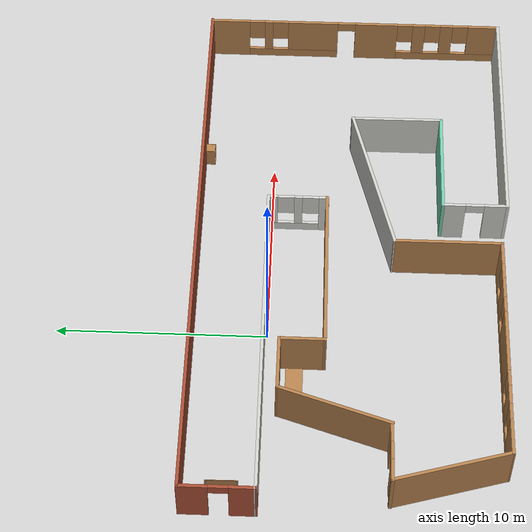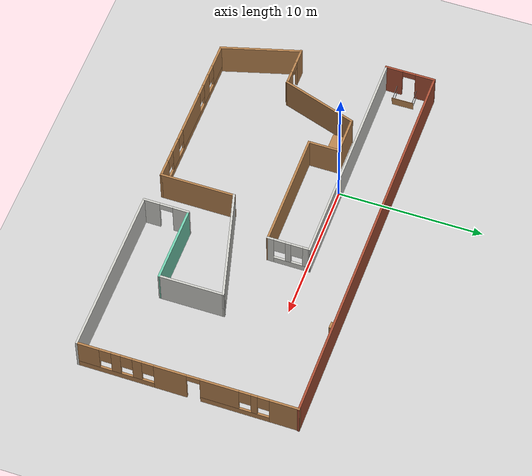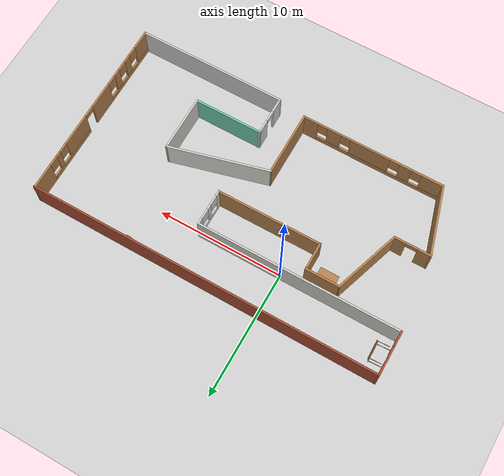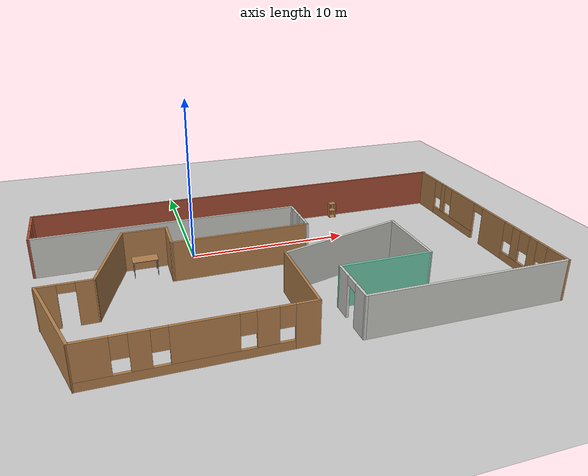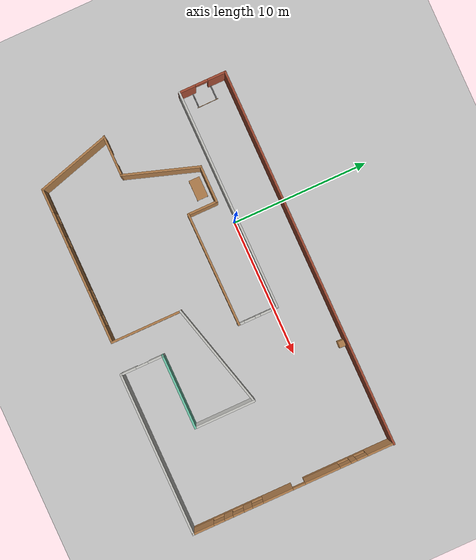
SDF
<sdf version="1.6">
 <world name="default">
  <light name="sun" type="directional">
   <pose>0 0 10 0 -0 0</pose>
   <diffuse>0.8 0.8 0.8 1</diffuse>
   <specular>0.2 0.2 0.2 1</specular>
   <attenuation>
    <range>1000</range>
    <constant>0.9</constant>
    <linear>0.01</linear>
    <quadratic>0.001</quadratic>
   </attenuation>
   <direction>-0.5 0.1 -0.9</direction>
  </light>
  <model name="ground_plane">
   <static>1</static>
   <link name="link">
    <collision name="collision">
     <geometry><plane><normal>0 0 1</normal><size>100 100</size></plane></geometry>
     <surface>
      <contact><collide_bitmask>65535</collide_bitmask></contact>
      <friction><ode><mu>100</mu><mu2>50</mu2></ode></friction>
     </surface>
    </collision>
    <visual name="visual">
     <cast_shadows>0</cast_shadows>
     <geometry><plane><normal>0 0 1</normal><size>100 100</size></plane></geometry>
     <material>
      <script><uri>file://media/materials/scripts/gazebo.material</uri><name>Gazebo/Grey</name></script>
     </material>
    </visual>
   </link>
  </model>
  <gravity>0 0 -9.8</gravity>
  <magnetic_field>6e-06 2.3e-05 -4.2e-05</magnetic_field>
  <atmosphere type="adiabatic"/>
  <physics name="default_physics" default="0" type="ode">
   <max_step_size>0.001</max_step_size>
   <real_time_factor>1</real_time_factor>
   <real_time_update_rate>1000</real_time_update_rate>
  </physics>
  <scene><ambient>0.4 0.4 0.4 1</ambient><background>0.7 0.7 0.7 1</background><shadows>1</shadows></scene>
  <spherical_coordinates>
   <surface_model>EARTH_WGS84</surface_model>
   <latitude_deg>0</latitude_deg>
   <longitude_deg>0</longitude_deg>
   <elevation>0</elevation>
   <heading_deg>0</heading_deg>
  </spherical_coordinates>
  <model name="mybuilding">
   <pose>4.42107 -3.89727 0 0 -0 0</pose>
   <link name="Wall_0">
    <collision name="Wall_0_Collision">
     <geometry><box><size>5.55933 0.15 2.5</size></box></geometry>
     <pose>0 0 1.25 0 -0 0</pose>
    </collision>
    <visual name="Wall_0_Visual">
     <pose>0 0 1.25 0 -0 0</pose>
     <geometry><box><size>5.55933 0.15 2.5</size></box></geometry>
     <material>
      <script><uri>file://media/materials/scripts/gazebo.material</uri><name>Gazebo/Wood</name></script>
      <ambient>1 1 1 1</ambient>
     </material>
     <meta><layer>0</layer></meta>
    </visual>
    <pose>-9.51879 0.729528 0 0 -0 1.25282</pose>
   </link>
   <link name="Wall_1">
    <collision name="Wall_1_Collision">
     <geometry><box><size>2.75 0.15 2.5</size></box></geometry>
     <pose>0 0 1.25 0 -0 0</pose>
    </collision>
    <visual name="Wall_1_Visual">
     <pose>0 0 1.25 0 -0 0</pose>
     <geometry><box><size>2.75 0.15 2.5</size></box></geometry>
     <material>
      <script><uri>file://media/materials/scripts/gazebo.material</uri><name>Gazebo/Wood</name></script>
      <ambient>1 1 1 1</ambient>
     </material>
     <meta><layer>0</layer></meta>
    </visual>
    <pose>-7.37318 3.2986 0 0 -0 0</pose>
   </link>
   <link name="Wall_10">
    <pose>1.92683 -5.9014 0 0 -0 1.5708</pose>
    <visual name="Wall_10_Visual_0">
     <pose>-1.03062 0 1.25 0 -0 0</pose>
     <geometry><box><size>1.18875 0.15 2.5</size></box></geometry>
     <material>
      <script><uri>file://media/materials/scripts/gazebo.material</uri><name>Gazebo/CeilingTiled</name></script>
      <ambient>0.435294 0.796078 0.67451 1</ambient>
     </material>
     <meta><layer>0</layer></meta>
    </visual>
    <collision name="Wall_10_Collision_0">
     <geometry><box><size>1.18875 0.15 2.5</size></box></geometry>
     <pose>-1.03062 0 1.25 0 -0 0</pose>
    </collision>
    <visual name="Wall_10_Visual_1">
     <pose>1.04438 0 1.25 0 -0 0</pose>
     <geometry><box><size>1.16125 0.15 2.5</size></box></geometry>
     <material>
      <script><uri>file://media/materials/scripts/gazebo.material</uri><name>Gazebo/CeilingTiled</name></script>
      <ambient>0.435294 0.796078 0.67451 1</ambient>
     </material>
     <meta><layer>0</layer></meta>
    </visual>
    <collision name="Wall_10_Collision_1">
     <geometry><box><size>1.16125 0.15 2.5</size></box></geometry>
     <pose>1.04438 0 1.25 0 -0 0</pose>
    </collision>
    <visual name="Wall_10_Visual_2">
     <pose>0.013754 0 2.25 0 -0 0</pose>
     <geometry><box><size>0.9 0.15 0.5</size></box></geometry>
     <material>
      <script><uri>file://media/materials/scripts/gazebo.material</uri><name>Gazebo/CeilingTiled</name></script>
      <ambient>0.435294 0.796078 0.67451 1</ambient>
     </material>
     <meta><layer>0</layer></meta>
    </visual>
    <collision name="Wall_10_Collision_2">
     <geometry><box><size>0.9 0.15 0.5</size></box></geometry>
     <pose>0.013754 0 2.25 0 -0 0</pose>
    </collision>
   </link>
   <link name="Wall_11">
    <collision name="Wall_11_Collision">
     <geometry><box><size>5.5 0.15 2.5</size></box></geometry>
     <pose>0 0 1.25 0 -0 0</pose>
    </collision>
    <visual name="Wall_11_Visual">
     <pose>0 0 1.25 0 -0 0</pose>
     <geometry><box><size>5.5 0.15 2.5</size></box></geometry>
     <material>
      <script><uri>file://media/materials/scripts/gazebo.material</uri><name>Gazebo/Grey</name></script>
      <ambient>0.435294 0.796078 0.67451 1</ambient>
     </material>
     <meta><layer>0</layer></meta>
    </visual>
    <pose>4.60182 -4.3514 0 0 -0 0</pose>
   </link>
   <link name="Wall_12">
    <collision name="Wall_12_Collision">
     <geometry><box><size>4.53176 0.15 2.5</size></box></geometry>
     <pose>0 0 1.25 0 -0 0</pose>
    </collision>
    <visual name="Wall_12_Visual">
     <pose>0 0 1.25 0 -0 0</pose>
     <geometry><box><size>4.53176 0.15 2.5</size></box></geometry>
     <material>
      <script><uri>file://media/materials/scripts/gazebo.material</uri><name>Gazebo/CeilingTiled</name></script>
      <ambient>0.435294 0.796078 0.67451 1</ambient>
     </material>
     <meta><layer>0</layer></meta>
    </visual>
    <pose>7.26808 -2.16053 0 0 -0 1.57479</pose>
   </link>
   <link name="Wall_13">
    <collision name="Wall_13_Collision">
     <geometry><box><size>8 0.15 2.5</size></box></geometry>
     <pose>0 0 1.25 0 -0 0</pose>
    </collision>
    <visual name="Wall_13_Visual">
     <pose>0 0 1.25 0 -0 0</pose>
     <geometry><box><size>8 0.15 2.5</size></box></geometry>
     <material>
      <script><uri>file://media/materials/scripts/gazebo.material</uri><name>Gazebo/CeilingTiled</name></script>
      <ambient>0.435294 0.796078 0.67451 1</ambient>
     </material>
     <meta><layer>0</layer></meta>
    </visual>
    <pose>3.46808 -0.985531 0 0 0 -2.87979</pose>
   </link>
   <link name="Wall_14">
    <collision name="Wall_14_Collision">
     <geometry><box><size>5.25 0.15 2.5</size></box></geometry>
     <pose>0 0 1.25 0 -0 0</pose>
    </collision>
    <visual name="Wall_14_Visual">
     <pose>0 0 1.25 0 -0 0</pose>
     <geometry><box><size>5.25 0.15 2.5</size></box></geometry>
     <material>
      <script><uri>file://media/materials/scripts/gazebo.material</uri><name>Gazebo/Wood</name></script>
      <ambient>1 1 1 1</ambient>
     </material>
     <meta><layer>0</layer></meta>
    </visual>
    <pose>-0.323175 -4.5514 0 0 0 -1.5708</pose>
   </link>
   <link name="Wall_15">
    <pose>-5.99818 -7.1014 0 0 -0 3.14159</pose>
    <visual name="Wall_15_Visual_0">
     <pose>-5.1146 0 1.25 0 -0 0</pose>
     <geometry><box><size>1.2708 0.15 2.5</size></box></geometry>
     <material>
      <script><uri>file://media/materials/scripts/gazebo.material</uri><name>Gazebo/Wood</name></script>
      <ambient>1 1 1 1</ambient>
     </material>
     <meta><layer>0</layer></meta>
    </visual>
    <collision name="Wall_15_Collision_0">
     <geometry><box><size>1.2708 0.15 2.5</size></box></geometry>
     <pose>-5.1146 0 1.25 0 -0 0</pose>
    </collision>
    <visual name="Wall_15_Visual_1">
     <pose>0.635401 0 0.25 0 -0 0</pose>
     <geometry><box><size>10.2292 0.15 0.5</size></box></geometry>
     <material>
      <script><uri>file://media/materials/scripts/gazebo.material</uri><name>Gazebo/Wood</name></script>
      <ambient>1 1 1 1</ambient>
     </material>
     <meta><layer>0</layer></meta>
    </visual>
    <collision name="Wall_15_Collision_1">
     <geometry><box><size>10.2292 0.15 0.5</size></box></geometry>
     <pose>0.635401 0 0.25 0 -0 0</pose>
    </collision>
    <visual name="Wall_15_Visual_2">
     <pose>-3.13489 0 1.5 0 -0 0</pose>
     <geometry><box><size>1.08861 0.15 2</size></box></geometry>
     <material>
      <script><uri>file://media/materials/scripts/gazebo.material</uri><name>Gazebo/Wood</name></script>
      <ambient>1 1 1 1</ambient>
     </material>
     <meta><layer>0</layer></meta>
    </visual>
    <collision name="Wall_15_Collision_2">
     <geometry><box><size>1.08861 0.15 2</size></box></geometry>
     <pose>-3.13489 0 1.5 0 -0 0</pose>
    </collision>
    <visual name="Wall_15_Visual_3">
     <pose>-0.182268 0 1.5 0 -0 0</pose>
     <geometry><box><size>3.21663 0.15 2</size></box></geometry>
     <material>
      <script><uri>file://media/materials/scripts/gazebo.material</uri><name>Gazebo/Wood</name></script>
      <ambient>1 1 1 1</ambient>
     </material>
     <meta><layer>0</layer></meta>
    </visual>
    <collision name="Wall_15_Collision_3">
     <geometry><box><size>3.21663 0.15 2</size></box></geometry>
     <pose>-0.182268 0 1.5 0 -0 0</pose>
    </collision>
    <visual name="Wall_15_Visual_4">
     <pose>2.70385 0 1.5 0 -0 0</pose>
     <geometry><box><size>0.955613 0.15 2</size></box></geometry>
     <material>
      <script><uri>file://media/materials/scripts/gazebo.material</uri><name>Gazebo/Wood</name></script>
      <ambient>1 1 1 1</ambient>
     </material>
     <meta><layer>0</layer></meta>
    </visual>
    <collision name="Wall_15_Collision_4">
     <geometry><box><size>0.955613 0.15 2</size></box></geometry>
     <pose>2.70385 0 1.5 0 -0 0</pose>
    </collision>
    <visual name="Wall_15_Visual_5">
     <pose>4.86583 0 1.5 0 -0 0</pose>
     <geometry><box><size>1.76834 0.15 2</size></box></geometry>
     <material>
      <script><uri>file://media/materials/scripts/gazebo.material</uri><name>Gazebo/Wood</name></script>
      <ambient>1 1 1 1</ambient>
     </material>
     <meta><layer>0</layer></meta>
    </visual>
    <collision name="Wall_15_Collision_5">
     <geometry><box><size>1.76834 0.15 2</size></box></geometry>
     <pose>4.86583 0 1.5 0 -0 0</pose>
    </collision>
    <visual name="Wall_15_Visual_6">
     <pose>-4.0792 0 1.9 0 -0 0</pose>
     <geometry><box><size>0.8 0.15 1.2</size></box></geometry>
     <material>
      <script><uri>file://media/materials/scripts/gazebo.material</uri><name>Gazebo/Wood</name></script>
      <ambient>1 1 1 1</ambient>
     </material>
     <meta><layer>0</layer></meta>
    </visual>
    <collision name="Wall_15_Collision_6">
     <geometry><box><size>0.8 0.15 1.2</size></box></geometry>
     <pose>-4.0792 0 1.9 0 -0 0</pose>
    </collision>
    <visual name="Wall_15_Visual_7">
     <pose>-2.19058 0 1.9 0 -0 0</pose>
     <geometry><box><size>0.8 0.15 1.2</size></box></geometry>
     <material>
      <script><uri>file://media/materials/scripts/gazebo.material</uri><name>Gazebo/Wood</name></script>
      <ambient>1 1 1 1</ambient>
     </material>
     <meta><layer>0</layer></meta>
    </visual>
    <collision name="Wall_15_Collision_7">
     <geometry><box><size>0.8 0.15 1.2</size></box></geometry>
     <pose>-2.19058 0 1.9 0 -0 0</pose>
    </collision>
    <visual name="Wall_15_Visual_8">
     <pose>1.82605 0 1.9 0 -0 0</pose>
     <geometry><box><size>0.8 0.15 1.2</size></box></geometry>
     <material>
      <script><uri>file://media/materials/scripts/gazebo.material</uri><name>Gazebo/Wood</name></script>
      <ambient>1 1 1 1</ambient>
     </material>
     <meta><layer>0</layer></meta>
    </visual>
    <collision name="Wall_15_Collision_8">
     <geometry><box><size>0.8 0.15 1.2</size></box></geometry>
     <pose>1.82605 0 1.9 0 -0 0</pose>
    </collision>
    <visual name="Wall_15_Visual_9">
     <pose>3.58166 0 1.9 0 -0 0</pose>
     <geometry><box><size>0.8 0.15 1.2</size></box></geometry>
     <material>
      <script><uri>file://media/materials/scripts/gazebo.material</uri><name>Gazebo/Wood</name></script>
      <ambient>1 1 1 1</ambient>
     </material>
     <meta><layer>0</layer></meta>
    </visual>
    <collision name="Wall_15_Collision_9">
     <geometry><box><size>0.8 0.15 1.2</size></box></geometry>
     <pose>3.58166 0 1.9 0 -0 0</pose>
    </collision>
   </link>
   <link name="Wall_16">
    <collision name="Wall_16_Collision">
     <geometry><box><size>5.62646 0.15 2.5</size></box></geometry>
     <pose>0 0 1.25 0 -0 0</pose>
    </collision>
    <visual name="Wall_16_Visual">
     <pose>0 0 1.25 0 -0 0</pose>
     <geometry><box><size>5.62646 0.15 2.5</size></box></geometry>
     <material>
      <script><uri>file://media/materials/scripts/gazebo.material</uri><name>Gazebo/Wood</name></script>
      <ambient>1 1 1 1</ambient>
     </material>
     <meta><layer>0</layer></meta>
    </visual>
    <pose>-12.4322 -4.47047 0 0 -0 1.85168</pose>
   </link>
   <link name="Wall_17">
    <pose>-11.7894 -1.83955 0 0 -0 0</pose>
    <visual name="Wall_17_Visual_0">
     <pose>-0.947526 0 1.25 0 -0 0</pose>
     <geometry><box><size>1.10495 0.15 2.5</size></box></geometry>
     <material>
      <script><uri>file://media/materials/scripts/gazebo.material</uri><name>Gazebo/Wood</name></script>
      <ambient>1 1 1 1</ambient>
     </material>
     <meta><layer>0</layer></meta>
    </visual>
    <collision name="Wall_17_Collision_0">
     <geometry><box><size>1.10495 0.15 2.5</size></box></geometry>
     <pose>-0.947526 0 1.25 0 -0 0</pose>
    </collision>
    <visual name="Wall_17_Visual_1">
     <pose>1.00247 0 1.25 0 -0 0</pose>
     <geometry><box><size>0.995052 0.15 2.5</size></box></geometry>
     <material>
      <script><uri>file://media/materials/scripts/gazebo.material</uri><name>Gazebo/Wood</name></script>
      <ambient>1 1 1 1</ambient>
     </material>
     <meta><layer>0</layer></meta>
    </visual>
    <collision name="Wall_17_Collision_1">
     <geometry><box><size>0.995052 0.15 2.5</size></box></geometry>
     <pose>1.00247 0 1.25 0 -0 0</pose>
    </collision>
    <visual name="Wall_17_Visual_2">
     <pose>0.054948 0 2.25 0 -0 0</pose>
     <geometry><box><size>0.9 0.15 0.5</size></box></geometry>
     <material>
      <script><uri>file://media/materials/scripts/gazebo.material</uri><name>Gazebo/Wood</name></script>
      <ambient>1 1 1 1</ambient>
     </material>
     <meta><layer>0</layer></meta>
    </visual>
    <collision name="Wall_17_Collision_2">
     <geometry><box><size>0.9 0.15 0.5</size></box></geometry>
     <pose>0.054948 0 2.25 0 -0 0</pose>
    </collision>
   </link>
   <link name="Wall_2">
    <collision name="Wall_2_Collision">
     <geometry><box><size>2.25 0.15 2.5</size></box></geometry>
     <pose>0 0 1.25 0 -0 0</pose>
    </collision>
    <visual name="Wall_2_Visual">
     <pose>0 0 1.25 0 -0 0</pose>
     <geometry><box><size>2.25 0.15 2.5</size></box></geometry>
     <material>
      <script><uri>file://media/materials/scripts/gazebo.material</uri><name>Gazebo/Wood</name></script>
      <ambient>1 1 1 1</ambient>
     </material>
     <meta><layer>0</layer></meta>
    </visual>
    <pose>-6.07317 2.2486 0 0 0 -1.5708</pose>
   </link>
   <link name="Wall_3">
    <collision name="Wall_3_Collision">
     <geometry><box><size>8.35391 0.15 2.5</size></box></geometry>
     <pose>0 0 1.25 0 -0 0</pose>
    </collision>
    <visual name="Wall_3_Visual">
     <pose>0 0 1.25 0 -0 0</pose>
     <geometry><box><size>8.35391 0.15 2.5</size></box></geometry>
     <material>
      <script><uri>file://media/materials/scripts/gazebo.material</uri><name>Gazebo/Wood</name></script>
      <ambient>1 1 1 1</ambient>
     </material>
     <meta><layer>0</layer></meta>
    </visual>
    <pose>-1.97124 1.21857 0 0 -0 0.004868</pose>
   </link>
   <link name="Wall_4">
    <pose>2.13069 2.64833 0 0 -0 1.5708</pose>
    <visual name="Wall_4_Visual_0">
     <pose>-1.25351 0 1.25 0 -0 0</pose>
     <geometry><box><size>0.492975 0.15 2.5</size></box></geometry>
     <material>
      <script><uri>file://media/materials/scripts/gazebo.material</uri><name>Gazebo/CeilingTiled</name></script>
      <ambient>0.435294 0.796078 0.67451 1</ambient>
     </material>
     <meta><layer>0</layer></meta>
    </visual>
    <collision name="Wall_4_Collision_0">
     <geometry><box><size>0.492975 0.15 2.5</size></box></geometry>
     <pose>-1.25351 0 1.25 0 -0 0</pose>
    </collision>
    <visual name="Wall_4_Visual_1">
     <pose>0.246487 0 0.25 0 -0 0</pose>
     <geometry><box><size>2.50703 0.15 0.5</size></box></geometry>
     <material>
      <script><uri>file://media/materials/scripts/gazebo.material</uri><name>Gazebo/CeilingTiled</name></script>
      <ambient>0.435294 0.796078 0.67451 1</ambient>
     </material>
     <meta><layer>0</layer></meta>
    </visual>
    <collision name="Wall_4_Collision_1">
     <geometry><box><size>2.50703 0.15 0.5</size></box></geometry>
     <pose>0.246487 0 0.25 0 -0 0</pose>
    </collision>
    <visual name="Wall_4_Visual_2">
     <pose>-0.010516 0 1.5 0 -0 0</pose>
     <geometry><box><size>0.393019 0.15 2</size></box></geometry>
     <material>
      <script><uri>file://media/materials/scripts/gazebo.material</uri><name>Gazebo/CeilingTiled</name></script>
      <ambient>0.435294 0.796078 0.67451 1</ambient>
     </material>
     <meta><layer>0</layer></meta>
    </visual>
    <collision name="Wall_4_Collision_2">
     <geometry><box><size>0.393019 0.15 2</size></box></geometry>
     <pose>-0.010516 0 1.5 0 -0 0</pose>
    </collision>
    <visual name="Wall_4_Visual_3">
     <pose>1.243 0 1.5 0 -0 0</pose>
     <geometry><box><size>0.514006 0.15 2</size></box></geometry>
     <material>
      <script><uri>file://media/materials/scripts/gazebo.material</uri><name>Gazebo/CeilingTiled</name></script>
      <ambient>0.435294 0.796078 0.67451 1</ambient>
     </material>
     <meta><layer>0</layer></meta>
    </visual>
    <collision name="Wall_4_Collision_3">
     <geometry><box><size>0.514006 0.15 2</size></box></geometry>
     <pose>1.243 0 1.5 0 -0 0</pose>
    </collision>
    <visual name="Wall_4_Visual_4">
     <pose>-0.607025 0 1.9 0 -0 0</pose>
     <geometry><box><size>0.8 0.15 1.2</size></box></geometry>
     <material>
      <script><uri>file://media/materials/scripts/gazebo.material</uri><name>Gazebo/CeilingTiled</name></script>
      <ambient>0.435294 0.796078 0.67451 1</ambient>
     </material>
     <meta><layer>0</layer></meta>
    </visual>
    <collision name="Wall_4_Collision_4">
     <geometry><box><size>0.8 0.15 1.2</size></box></geometry>
     <pose>-0.607025 0 1.9 0 -0 0</pose>
    </collision>
    <visual name="Wall_4_Visual_5">
     <pose>0.585994 0 1.9 0 -0 0</pose>
     <geometry><box><size>0.8 0.15 1.2</size></box></geometry>
     <material>
      <script><uri>file://media/materials/scripts/gazebo.material</uri><name>Gazebo/CeilingTiled</name></script>
      <ambient>0.435294 0.796078 0.67451 1</ambient>
     </material>
     <meta><layer>0</layer></meta>
    </visual>
    <collision name="Wall_4_Collision_5">
     <geometry><box><size>0.8 0.15 1.2</size></box></geometry>
     <pose>0.585994 0 1.9 0 -0 0</pose>
    </collision>
   </link>
   <link name="Wall_5">
    <collision name="Wall_5_Collision">
     <geometry><box><size>16.1039 0.15 2.5</size></box></geometry>
     <pose>0 0 1.25 0 -0 0</pose>
    </collision>
    <visual name="Wall_5_Visual">
     <pose>0 0 1.25 0 -0 0</pose>
     <geometry><box><size>16.1039 0.15 2.5</size></box></geometry>
     <material>
      <script><uri>file://media/materials/scripts/gazebo.material</uri><name>Gazebo/CeilingTiled</name></script>
      <ambient>0.435294 0.796078 0.67451 1</ambient>
     </material>
     <meta><layer>0</layer></meta>
    </visual>
    <pose>-5.84624 4.06857 0 0 0 -3.13909</pose>
   </link>
   <link name="Wall_6">
    <pose>-13.8232 5.74994 0 0 -0 1.5708</pose>
    <visual name="Wall_6_Visual_0">
     <pose>-1.14744 0 1.25 0 -0 0</pose>
     <geometry><box><size>1.2581 0.15 2.5</size></box></geometry>
     <material>
      <script><uri>file://media/materials/scripts/gazebo.material</uri><name>Gazebo/Bricks</name></script>
      <ambient>0.760784 0.662745 0.627451 1</ambient>
     </material>
     <meta><layer>0</layer></meta>
    </visual>
    <collision name="Wall_6_Collision_0">
     <geometry><box><size>1.2581 0.15 2.5</size></box></geometry>
     <pose>-1.14744 0 1.25 0 -0 0</pose>
    </collision>
    <visual name="Wall_6_Visual_1">
     <pose>1.07905 0 1.25 0 -0 0</pose>
     <geometry><box><size>1.39489 0.15 2.5</size></box></geometry>
     <material>
      <script><uri>file://media/materials/scripts/gazebo.material</uri><name>Gazebo/Bricks</name></script>
      <ambient>0.760784 0.662745 0.627451 1</ambient>
     </material>
     <meta><layer>0</layer></meta>
    </visual>
    <collision name="Wall_6_Collision_1">
     <geometry><box><size>1.39489 0.15 2.5</size></box></geometry>
     <pose>1.07905 0 1.25 0 -0 0</pose>
    </collision>
    <visual name="Wall_6_Visual_2">
     <pose>-0.068392 0 2.25 0 -0 0</pose>
     <geometry><box><size>0.9 0.15 0.5</size></box></geometry>
     <material>
      <script><uri>file://media/materials/scripts/gazebo.material</uri><name>Gazebo/Bricks</name></script>
      <ambient>0.760784 0.662745 0.627451 1</ambient>
     </material>
     <meta><layer>0</layer></meta>
    </visual>
    <collision name="Wall_6_Collision_2">
     <geometry><box><size>0.9 0.15 0.5</size></box></geometry>
     <pose>-0.068392 0 2.25 0 -0 0</pose>
    </collision>
   </link>
   <link name="Wall_7">
    <collision name="Wall_7_Collision">
     <geometry><box><size>27.75 0.15 2.5</size></box></geometry>
     <pose>0 0 1.25 0 -0 0</pose>
    </collision>
    <visual name="Wall_7_Visual">
     <pose>0 0 1.25 0 -0 0</pose>
     <geometry><box><size>27.75 0.15 2.5</size></box></geometry>
     <material>
      <script><uri>file://media/materials/scripts/gazebo.material</uri><name>Gazebo/Bricks</name></script>
      <ambient>0.760784 0.662745 0.627451 1</ambient>
     </material>
     <meta><layer>0</layer></meta>
    </visual>
    <pose>0.023349 7.45127 0 0 -0 0</pose>
   </link>
   <link name="Wall_8">
    <pose>13.7768 -6.1e-05 0 0 0 -1.5708</pose>
    <visual name="Wall_8_Visual_0">
     <pose>-6.51338 0 1.25 0 -0 0</pose>
     <geometry><box><size>2.02598 0.15 2.5</size></box></geometry>
     <material>
      <script><uri>file://media/materials/scripts/gazebo.material</uri><name>Gazebo/Wood</name></script>
      <ambient>0.760784 0.662745 0.627451 1</ambient>
     </material>
     <meta><layer>0</layer></meta>
    </visual>
    <collision name="Wall_8_Collision_0">
     <geometry><box><size>2.02598 0.15 2.5</size></box></geometry>
     <pose>-6.51338 0 1.25 0 -0 0</pose>
    </collision>
    <visual name="Wall_8_Visual_1">
     <pose>1.13442 0 1.25 0 -0 0</pose>
     <geometry><box><size>2.20902 0.15 2.5</size></box></geometry>
     <material>
      <script><uri>file://media/materials/scripts/gazebo.material</uri><name>Gazebo/Wood</name></script>
      <ambient>0.760784 0.662745 0.627451 1</ambient>
     </material>
     <meta><layer>0</layer></meta>
    </visual>
    <collision name="Wall_8_Collision_1">
     <geometry><box><size>2.20902 0.15 2.5</size></box></geometry>
     <pose>1.13442 0 1.25 0 -0 0</pose>
    </collision>
    <visual name="Wall_8_Visual_2">
     <pose>-3.18524 0 0.25 0 -0 0</pose>
     <geometry><box><size>4.6303 0.15 0.5</size></box></geometry>
     <material>
      <script><uri>file://media/materials/scripts/gazebo.material</uri><name>Gazebo/Wood</name></script>
      <ambient>0.760784 0.662745 0.627451 1</ambient>
     </material>
     <meta><layer>0</layer></meta>
    </visual>
    <collision name="Wall_8_Collision_2">
     <geometry><box><size>4.6303 0.15 0.5</size></box></geometry>
     <pose>-3.18524 0 0.25 0 -0 0</pose>
    </collision>
    <visual name="Wall_8_Visual_3">
     <pose>4.88265 0 0.25 0 -0 0</pose>
     <geometry><box><size>5.28744 0.15 0.5</size></box></geometry>
     <material>
      <script><uri>file://media/materials/scripts/gazebo.material</uri><name>Gazebo/Wood</name></script>
      <ambient>0.760784 0.662745 0.627451 1</ambient>
     </material>
     <meta><layer>0</layer></meta>
    </visual>
    <collision name="Wall_8_Collision_3">
     <geometry><box><size>5.28744 0.15 0.5</size></box></geometry>
     <pose>4.88265 0 0.25 0 -0 0</pose>
    </collision>
    <visual name="Wall_8_Visual_4">
     <pose>-4.48859 0 1.5 0 -0 0</pose>
     <geometry><box><size>0.423609 0.15 2</size></box></geometry>
     <material>
      <script><uri>file://media/materials/scripts/gazebo.material</uri><name>Gazebo/Wood</name></script>
      <ambient>0.760784 0.662745 0.627451 1</ambient>
     </material>
     <meta><layer>0</layer></meta>
    </visual>
    <collision name="Wall_8_Collision_4">
     <geometry><box><size>0.423609 0.15 2</size></box></geometry>
     <pose>-4.48859 0 1.5 0 -0 0</pose>
    </collision>
    <visual name="Wall_8_Visual_5">
     <pose>-2.17344 0 1.5 0 -0 0</pose>
     <geometry><box><size>2.6067 0.15 2</size></box></geometry>
     <material>
      <script><uri>file://media/materials/scripts/gazebo.material</uri><name>Gazebo/Wood</name></script>
      <ambient>0.760784 0.662745 0.627451 1</ambient>
     </material>
     <meta><layer>0</layer></meta>
    </visual>
    <collision name="Wall_8_Collision_5">
     <geometry><box><size>2.6067 0.15 2</size></box></geometry>
     <pose>-2.17344 0 1.5 0 -0 0</pose>
    </collision>
    <visual name="Wall_8_Visual_6">
     <pose>-2.17344 0 1.5 0 -0 0</pose>
     <geometry><box><size>2.6067 0.15 2</size></box></geometry>
     <material>
      <script><uri>file://media/materials/scripts/gazebo.material</uri><name>Gazebo/Wood</name></script>
      <ambient>0.760784 0.662745 0.627451 1</ambient>
     </material>
     <meta><layer>0</layer></meta>
    </visual>
    <collision name="Wall_8_Collision_6">
     <geometry><box><size>2.6067 0.15 2</size></box></geometry>
     <pose>-2.17344 0 1.5 0 -0 0</pose>
    </collision>
    <visual name="Wall_8_Visual_7">
     <pose>3.3578 0 1.5 0 -0 0</pose>
     <geometry><box><size>0.63774 0.15 2</size></box></geometry>
     <material>
      <script><uri>file://media/materials/scripts/gazebo.material</uri><name>Gazebo/Wood</name></script>
      <ambient>0.760784 0.662745 0.627451 1</ambient>
     </material>
     <meta><layer>0</layer></meta>
    </visual>
    <collision name="Wall_8_Collision_7">
     <geometry><box><size>0.63774 0.15 2</size></box></geometry>
     <pose>3.3578 0 1.5 0 -0 0</pose>
    </collision>
    <visual name="Wall_8_Visual_8">
     <pose>4.79554 0 1.5 0 -0 0</pose>
     <geometry><box><size>0.637741 0.15 2</size></box></geometry>
     <material>
      <script><uri>file://media/materials/scripts/gazebo.material</uri><name>Gazebo/Wood</name></script>
      <ambient>0.760784 0.662745 0.627451 1</ambient>
     </material>
     <meta><layer>0</layer></meta>
    </visual>
    <collision name="Wall_8_Collision_8">
     <geometry><box><size>0.637741 0.15 2</size></box></geometry>
     <pose>4.79554 0 1.5 0 -0 0</pose>
    </collision>
    <visual name="Wall_8_Visual_9">
     <pose>6.72039 0 1.5 0 -0 0</pose>
     <geometry><box><size>1.61196 0.15 2</size></box></geometry>
     <material>
      <script><uri>file://media/materials/scripts/gazebo.material</uri><name>Gazebo/Wood</name></script>
      <ambient>0.760784 0.662745 0.627451 1</ambient>
     </material>
     <meta><layer>0</layer></meta>
    </visual>
    <collision name="Wall_8_Collision_9">
     <geometry><box><size>1.61196 0.15 2</size></box></geometry>
     <pose>6.72039 0 1.5 0 -0 0</pose>
    </collision>
    <visual name="Wall_8_Visual_10">
     <pose>-5.10039 0 1.9 0 -0 0</pose>
     <geometry><box><size>0.8 0.15 1.2</size></box></geometry>
     <material>
      <script><uri>file://media/materials/scripts/gazebo.material</uri><name>Gazebo/Wood</name></script>
      <ambient>0.760784 0.662745 0.627451 1</ambient>
     </material>
     <meta><layer>0</layer></meta>
    </visual>
    <collision name="Wall_8_Collision_10">
     <geometry><box><size>0.8 0.15 1.2</size></box></geometry>
     <pose>-5.10039 0 1.9 0 -0 0</pose>
    </collision>
    <visual name="Wall_8_Visual_11">
     <pose>2.63893 0 1.9 0 -0 0</pose>
     <geometry><box><size>0.8 0.15 1.2</size></box></geometry>
     <material>
      <script><uri>file://media/materials/scripts/gazebo.material</uri><name>Gazebo/Wood</name></script>
      <ambient>0.760784 0.662745 0.627451 1</ambient>
     </material>
     <meta><layer>0</layer></meta>
    </visual>
    <collision name="Wall_8_Collision_11">
     <geometry><box><size>0.8 0.15 1.2</size></box></geometry>
     <pose>2.63893 0 1.9 0 -0 0</pose>
    </collision>
    <visual name="Wall_8_Visual_12">
     <pose>-3.87678 0 1.9 0 -0 0</pose>
     <geometry><box><size>0.8 0.15 1.2</size></box></geometry>
     <material>
      <script><uri>file://media/materials/scripts/gazebo.material</uri><name>Gazebo/Wood</name></script>
      <ambient>0.760784 0.662745 0.627451 1</ambient>
     </material>
     <meta><layer>0</layer></meta>
    </visual>
    <collision name="Wall_8_Collision_12">
     <geometry><box><size>0.8 0.15 1.2</size></box></geometry>
     <pose>-3.87678 0 1.9 0 -0 0</pose>
    </collision>
    <visual name="Wall_8_Visual_13">
     <pose>4.07667 0 1.9 0 -0 0</pose>
     <geometry><box><size>0.8 0.15 1.2</size></box></geometry>
     <material>
      <script><uri>file://media/materials/scripts/gazebo.material</uri><name>Gazebo/Wood</name></script>
      <ambient>0.760784 0.662745 0.627451 1</ambient>
     </material>
     <meta><layer>0</layer></meta>
    </visual>
    <collision name="Wall_8_Collision_13">
     <geometry><box><size>0.8 0.15 1.2</size></box></geometry>
     <pose>4.07667 0 1.9 0 -0 0</pose>
    </collision>
    <visual name="Wall_8_Visual_14">
     <pose>5.51441 0 1.9 0 -0 0</pose>
     <geometry><box><size>0.8 0.15 1.2</size></box></geometry>
     <material>
      <script><uri>file://media/materials/scripts/gazebo.material</uri><name>Gazebo/Wood</name></script>
      <ambient>0.760784 0.662745 0.627451 1</ambient>
     </material>
     <meta><layer>0</layer></meta>
    </visual>
    <collision name="Wall_8_Collision_14">
     <geometry><box><size>0.8 0.15 1.2</size></box></geometry>
     <pose>5.51441 0 1.9 0 -0 0</pose>
    </collision>
    <visual name="Wall_8_Visual_15">
     <pose>-0.420089 0 2.25 0 -0 0</pose>
     <geometry><box><size>0.9 0.15 0.5</size></box></geometry>
     <material>
      <script><uri>file://media/materials/scripts/gazebo.material</uri><name>Gazebo/Wood</name></script>
      <ambient>0.760784 0.662745 0.627451 1</ambient>
     </material>
     <meta><layer>0</layer></meta>
    </visual>
    <collision name="Wall_8_Collision_15">
     <geometry><box><size>0.9 0.15 0.5</size></box></geometry>
     <pose>-0.420089 0 2.25 0 -0 0</pose>
    </collision>
    <visual name="Wall_8_Visual_16">
     <pose>-0.420089 0 2.25 0 -0 0</pose>
     <geometry><box><size>0.9 0.15 0.5</size></box></geometry>
     <material>
      <script><uri>file://media/materials/scripts/gazebo.material</uri><name>Gazebo/Wood</name></script>
      <ambient>0.760784 0.662745 0.627451 1</ambient>
     </material>
     <meta><layer>0</layer></meta>
    </visual>
    <collision name="Wall_8_Collision_16">
     <geometry><box><size>0.9 0.15 0.5</size></box></geometry>
     <pose>-0.420089 0 2.25 0 -0 0</pose>
    </collision>
   </link>
   <link name="Wall_9">
    <collision name="Wall_9_Collision">
     <geometry><box><size>12 0.15 2.5</size></box></geometry>
     <pose>0 0 1.25 0 -0 0</pose>
    </collision>
    <visual name="Wall_9_Visual">
     <pose>0 0 1.25 0 -0 0</pose>
     <geometry><box><size>12 0.15 2.5</size></box></geometry>
     <material>
      <script><uri>file://media/materials/scripts/gazebo.material</uri><name>Gazebo/CeilingTiled</name></script>
      <ambient>0.435294 0.796078 0.67451 1</ambient>
     </material>
     <meta><layer>0</layer></meta>
    </visual>
    <pose>7.85182 -7.4514 0 0 -0 3.14159</pose>
   </link>
   <static>1</static>
  </model>
  <model name="cabinet">
   <static>1</static>
   <link name="cabinet_bottom_plate">
    <inertial>
     <pose>0 0 -1 0 -0 0</pose>
     <inertia><ixx>2.05</ixx><ixy>0</ixy><ixz>0</ixz><iyy>2.05</iyy><iyz>0</iyz><izz>2.05</izz></inertia>
     <mass>25</mass>
    </inertial>
    <collision name="cabinet_bottom_plate_geom">
     <pose>0 0 0.01 0 -0 0</pose>
     <geometry><box><size>0.45 0.45 0.02</size></box></geometry>
    </collision>
    <visual name="cabinet_bottom_plate_geom_visual">
     <pose>0 0 0.01 0 -0 0</pose>
     <geometry><box><size>0.45 0.45 0.02</size></box></geometry>
     <material>
      <script><uri>file://media/materials/scripts/gazebo.material</uri><name>Gazebo/Wood</name></script>
     </material>
    </visual>
    <collision name="cabinet_bottom_plate_geom_cabinet_back_plate">
     <pose>0.235 0 0.51 0 -0 0</pose>
     <geometry><box><size>0.02 0.45 1.02</size></box></geometry>
    </collision>
    <visual name="cabinet_bottom_plate_geom_cabinet_back_plate_visual">
     <pose>0.235 0 0.51 0 -0 0</pose>
     <geometry><box><size>0.02 0.45 1.02</size></box></geometry>
     <material>
      <script><uri>file://media/materials/scripts/gazebo.material</uri><name>Gazebo/Wood</name></script>
     </material>
    </visual>
    <collision name="cabinet_bottom_plate_geom_cabinet_left_plate">
     <pose>0 0.235 0.51 0 -0 0</pose>
     <geometry><box><size>0.45 0.02 1.02</size></box></geometry>
    </collision>
    <visual name="cabinet_bottom_plate_geom_cabinet_left_plate_visual">
     <pose>0 0.235 0.51 0 -0 0</pose>
     <geometry><box><size>0.45 0.02 1.02</size></box></geometry>
     <material>
      <script><uri>file://media/materials/scripts/gazebo.material</uri><name>Gazebo/Wood</name></script>
     </material>
    </visual>
    <collision name="cabinet_bottom_plate_geom_cabinet_middle_plate">
     <pose>0 0 0.51 0 -0 0</pose>
     <geometry><box><size>0.45 0.45 0.02</size></box></geometry>
    </collision>
    <visual name="cabinet_bottom_plate_geom_cabinet_middle_plate_visual">
     <pose>0 0 0.51 0 -0 0</pose>
     <geometry><box><size>0.45 0.45 0.02</size></box></geometry>
     <material>
      <script><uri>file://media/materials/scripts/gazebo.material</uri><name>Gazebo/Wood</name></script>
     </material>
    </visual>
    <collision name="cabinet_bottom_plate_geom_cabinet_right_plate">
     <pose>0 -0.235 0.51 0 -0 0</pose>
     <geometry><box><size>0.45 0.02 1.02</size></box></geometry>
    </collision>
    <visual name="cabinet_bottom_plate_geom_cabinet_right_plate_visual">
     <pose>0 -0.235 0.51 0 -0 0</pose>
     <geometry><box><size>0.45 0.02 1.02</size></box></geometry>
     <material>
      <script><uri>file://media/materials/scripts/gazebo.material</uri><name>Gazebo/Wood</name></script>
     </material>
    </visual>
    <collision name="cabinet_bottom_plate_geom_cabinet_top_plate">
     <pose>0 0 1.01 0 -0 0</pose>
     <geometry><box><size>0.45 0.45 0.02</size></box></geometry>
    </collision>
    <visual name="cabinet_bottom_plate_geom_cabinet_top_plate_visual">
     <pose>0 0 1.01 0 -0 0</pose>
     <geometry><box><size>0.45 0.45 0.02</size></box></geometry>
     <material>
      <script><uri>file://media/materials/scripts/gazebo.material</uri><name>Gazebo/Wood</name></script>
     </material>
    </visual>
   </link>
   <pose>10.7058 3.25812 0 0 -0 1.5224</pose>
  </model>
  <model name="table">
   <static>1</static>
   <link name="link">
    <collision name="surface">
     <pose>0 0 1 0 -0 0</pose>
     <geometry><box><size>1.5 0.8 0.03</size></box></geometry>
     <surface><friction><ode><mu>0.6</mu><mu2>0.6</mu2></ode></friction></surface>
    </collision>
    <visual name="visual1">
     <pose>0 0 1 0 -0 0</pose>
     <geometry><box><size>1.5 0.8 0.03</size></box></geometry>
     <material>
      <script><uri>file://media/materials/scripts/gazebo.material</uri><name>Gazebo/Wood</name></script>
     </material>
    </visual>
    <collision name="front_left_leg">
     <pose>0.68 0.38 0.5 0 -0 0</pose>
     <geometry><cylinder><radius>0.02</radius><length>1</length></cylinder></geometry>
    </collision>
    <visual name="front_left_leg">
     <pose>0.68 0.38 0.5 0 -0 0</pose>
     <geometry><cylinder><radius>0.02</radius><length>1</length></cylinder></geometry>
     <material>
      <script><uri>file://media/materials/scripts/gazebo.material</uri><name>Gazebo/Grey</name></script>
     </material>
    </visual>
    <collision name="front_right_leg">
     <pose>0.68 -0.38 0.5 0 -0 0</pose>
     <geometry><cylinder><radius>0.02</radius><length>1</length></cylinder></geometry>
    </collision>
    <visual name="front_right_leg">
     <pose>0.68 -0.38 0.5 0 -0 0</pose>
     <geometry><cylinder><radius>0.02</radius><length>1</length></cylinder></geometry>
     <material>
      <script><uri>file://media/materials/scripts/gazebo.material</uri><name>Gazebo/Grey</name></script>
     </material>
    </visual>
    <collision name="back_right_leg">
     <pose>-0.68 -0.38 0.5 0 -0 0</pose>
     <geometry><cylinder><radius>0.02</radius><length>1</length></cylinder></geometry>
    </collision>
    <visual name="back_right_leg">
     <pose>-0.68 -0.38 0.5 0 -0 0</pose>
     <geometry><cylinder><radius>0.02</radius><length>1</length></cylinder></geometry>
     <material>
      <script><uri>file://media/materials/scripts/gazebo.material</uri><name>Gazebo/Grey</name></script>
     </material>
    </visual>
    <collision name="back_left_leg">
     <pose>-0.68 0.38 0.5 0 -0 0</pose>
     <geometry><cylinder><radius>0.02</radius><length>1</length></cylinder></geometry>
    </collision>
    <visual name="back_left_leg">
     <pose>-0.68 0.38 0.5 0 -0 0</pose>
     <geometry><cylinder><radius>0.02</radius><length>1</length></cylinder></geometry>
     <material>
      <script><uri>file://media/materials/scripts/gazebo.material</uri><name>Gazebo/Grey</name></script>
     </material>
    </visual>
   </link>
   <pose>-3.09539 -1.32141 0 0 -0 0</pose>
  </model>
  <model name="table_0">
   <static>1</static>
   <link name="link">
    <collision name="surface">
     <pose>0 0 1 0 -0 0</pose>
     <geometry><box><size>1.5 0.8 0.03</size></box></geometry>
     <surface><friction><ode><mu>0.6</mu><mu2>0.6</mu2></ode></friction></surface>
    </collision>
    <visual name="visual1">
     <pose>0 0 1 0 -0 0</pose>
     <geometry><box><size>1.5 0.8 0.03</size></box></geometry>
     <material>
      <script><uri>file://media/materials/scripts/gazebo.material</uri><name>Gazebo/Wood</name></script>
     </material>
    </visual>
    <collision name="front_left_leg">
     <pose>0.68 0.38 0.5 0 -0 0</pose>
     <geometry><cylinder><radius>0.02</radius><length>1</length></cylinder></geometry>
    </collision>
    <visual name="front_left_leg">
     <pose>0.68 0.38 0.5 0 -0 0</pose>
     <geometry><cylinder><radius>0.02</radius><length>1</length></cylinder></geometry>
     <material>
      <script><uri>file://media/materials/scripts/gazebo.material</uri><name>Gazebo/Grey</name></script>
     </material>
    </visual>
    <collision name="front_right_leg">
     <pose>0.68 -0.38 0.5 0 -0 0</pose>
     <geometry><cylinder><radius>0.02</radius><length>1</length></cylinder></geometry>
    </collision>
    <visual name="front_right_leg">
     <pose>0.68 -0.38 0.5 0 -0 0</pose>
     <geometry><cylinder><radius>0.02</radius><length>1</length></cylinder></geometry>
     <material>
      <script><uri>file://media/materials/scripts/gazebo.material</uri><name>Gazebo/Grey</name></script>
     </material>
    </visual>
    <collision name="back_right_leg">
     <pose>-0.68 -0.38 0.5 0 -0 0</pose>
     <geometry><cylinder><radius>0.02</radius><length>1</length></cylinder></geometry>
    </collision>
    <visual name="back_right_leg">
     <pose>-0.68 -0.38 0.5 0 -0 0</pose>
     <geometry><cylinder><radius>0.02</radius><length>1</length></cylinder></geometry>
     <material>
      <script><uri>file://media/materials/scripts/gazebo.material</uri><name>Gazebo/Grey</name></script>
     </material>
    </visual>
    <collision name="back_left_leg">
     <pose>-0.68 0.38 0.5 0 -0 0</pose>
     <geometry><cylinder><radius>0.02</radius><length>1</length></cylinder></geometry>
    </collision>
    <visual name="back_left_leg">
     <pose>-0.68 0.38 0.5 0 -0 0</pose>
     <geometry><cylinder><radius>0.02</radius><length>1</length></cylinder></geometry>
     <material>
      <script><uri>file://media/materials/scripts/gazebo.material</uri><name>Gazebo/Grey</name></script>
     </material>
    </visual>
   </link>
   <pose>-9.25384 1.72387 0.625906 -1.7137 0.001136 -1.56054</pose>
  </model>
  <plugin filename="libcollision_map_creator.so" name="collision_map_creator"/>
 </world>
</sdf>
